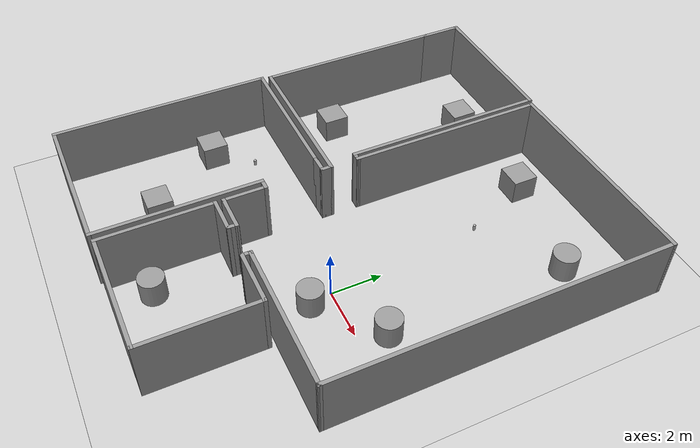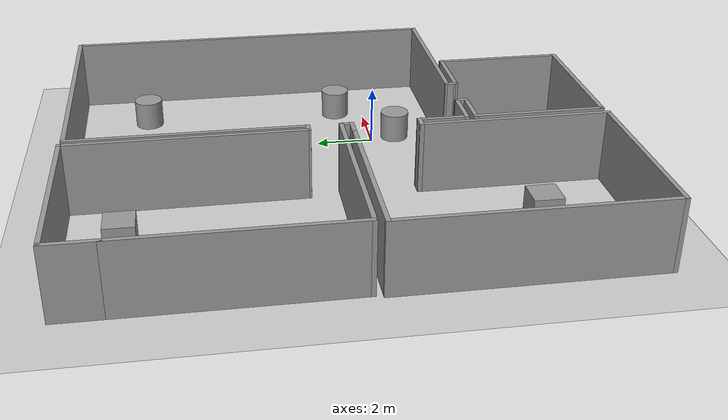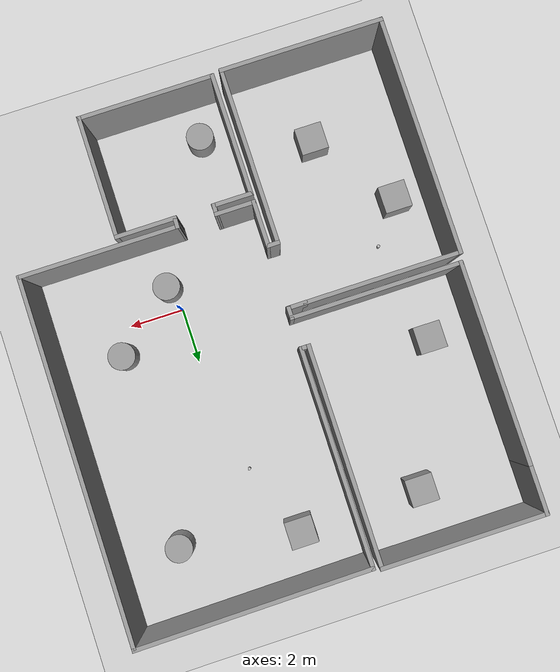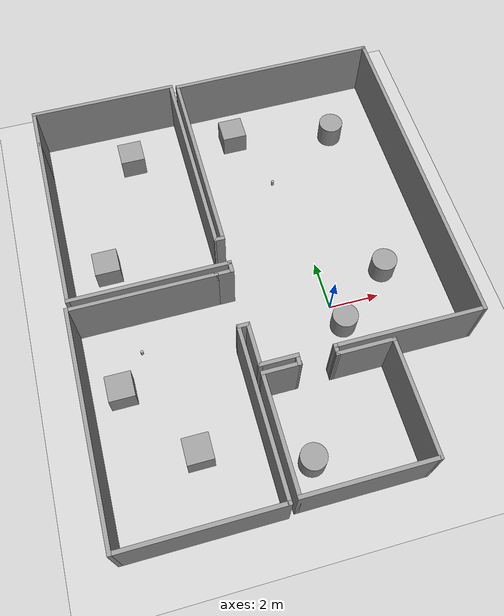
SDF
<sdf version="1.7">
 <world name="default">
  <light name="sun" type="directional">
   <pose>0 0 10 0 -0 0</pose>
   <diffuse>0.8 0.8 0.8 1</diffuse>
   <specular>0.2 0.2 0.2 1</specular>
   <attenuation>
    <range>1000</range>
    <constant>0.9</constant>
    <linear>0.01</linear>
    <quadratic>0.001</quadratic>
   </attenuation>
   <direction>-0.5 0.1 -0.9</direction>
   <spot><inner_angle>0</inner_angle><outer_angle>0</outer_angle><falloff>0</falloff></spot>
  </light>
  <model name="ground_plane">
   <static>1</static>
   <link name="link">
    <collision name="collision">
     <geometry><plane><normal>0 0 1</normal><size>100 100</size></plane></geometry>
     <surface>
      <contact><collide_bitmask>65535</collide_bitmask></contact>
      <friction><ode><mu>100</mu><mu2>50</mu2></ode></friction>
     </surface>
    </collision>
    <visual name="visual">
     <cast_shadows>0</cast_shadows>
     <geometry><plane><normal>0 0 1</normal><size>100 100</size></plane></geometry>
     <material>
      <script><uri>file://media/materials/scripts/gazebo.material</uri><name>Gazebo/Grey</name></script>
     </material>
    </visual>
   </link>
  </model>
  <gravity>0 0 -9.8</gravity>
  <magnetic_field>6e-06 2.3e-05 -4.2e-05</magnetic_field>
  <atmosphere type="adiabatic"/>
  <physics type="ode">
   <max_step_size>0.001</max_step_size>
   <real_time_factor>1</real_time_factor>
   <real_time_update_rate>1000</real_time_update_rate>
  </physics>
  <scene><ambient>0.4 0.4 0.4 1</ambient><background>0.7 0.7 0.7 1</background><shadows>1</shadows></scene>
  <spherical_coordinates>
   <surface_model>EARTH_WGS84</surface_model>
   <latitude_deg>0</latitude_deg>
   <longitude_deg>0</longitude_deg>
   <elevation>0</elevation>
   <heading_deg>0</heading_deg>
  </spherical_coordinates>
  <model name="House">
   <pose>-2.52892 1.69404 0 0 -0 0</pose>
   <link name="Wall_12">
    <collision name="Wall_12_Collision">
     <geometry><box><size>0.75 0.15 2.5</size></box></geometry>
     <pose>0 0 1.25 0 -0 0</pose>
    </collision>
    <visual name="Wall_12_Visual">
     <pose>0 0 1.25 0 -0 0</pose>
     <geometry><box><size>0.75 0.15 2.5</size></box></geometry>
     <material>
      <script><uri>file://media/materials/scripts/gazebo.material</uri><name>Gazebo/Grey</name></script>
      <ambient>1 1 1 1</ambient>
     </material>
     <meta><layer>0</layer></meta>
    </visual>
    <pose>-1.42533 -0.35 0 0 -0 0</pose>
   </link>
   <link name="Wall_13">
    <collision name="Wall_13_Collision">
     <geometry><box><size>0.5 0.15 2.5</size></box></geometry>
     <pose>0 0 1.25 0 -0 0</pose>
    </collision>
    <visual name="Wall_13_Visual">
     <pose>0 0 1.25 0 -0 0</pose>
     <geometry><box><size>0.5 0.15 2.5</size></box></geometry>
     <material>
      <script><uri>file://media/materials/scripts/gazebo.material</uri><name>Gazebo/Grey</name></script>
      <ambient>1 1 1 1</ambient>
     </material>
     <meta><layer>0</layer></meta>
    </visual>
    <pose>-1.12533 -0.175 0 0 -0 1.5708</pose>
   </link>
   <link name="Wall_14">
    <collision name="Wall_14_Collision">
     <geometry><box><size>6.25 0.15 2.5</size></box></geometry>
     <pose>0 0 1.25 0 -0 0</pose>
    </collision>
    <visual name="Wall_14_Visual">
     <pose>0 0 1.25 0 -0 0</pose>
     <geometry><box><size>6.25 0.15 2.5</size></box></geometry>
     <material>
      <script><uri>file://media/materials/scripts/gazebo.material</uri><name>Gazebo/Grey</name></script>
      <ambient>1 1 1 1</ambient>
     </material>
     <meta><layer>0</layer></meta>
    </visual>
    <pose>-4.17533 0 0 0 -0 3.14159</pose>
   </link>
   <link name="Wall_15">
    <collision name="Wall_15_Collision">
     <geometry><box><size>7.5 0.15 2.5</size></box></geometry>
     <pose>0 0 1.25 0 -0 0</pose>
    </collision>
    <visual name="Wall_15_Visual">
     <pose>0 0 1.25 0 -0 0</pose>
     <geometry><box><size>7.5 0.15 2.5</size></box></geometry>
     <material>
      <script><uri>file://media/materials/scripts/gazebo.material</uri><name>Gazebo/Grey</name></script>
      <ambient>1 1 1 1</ambient>
     </material>
     <meta><layer>0</layer></meta>
    </visual>
    <pose>-7.22533 3.675 0 0 -0 1.5708</pose>
   </link>
   <link name="Wall_16">
    <collision name="Wall_16_Collision">
     <geometry><box><size>1.75 0.15 2.5</size></box></geometry>
     <pose>0 0 1.25 0 -0 0</pose>
    </collision>
    <visual name="Wall_16_Visual">
     <pose>0 0 1.25 0 -0 0</pose>
     <geometry><box><size>1.75 0.15 2.5</size></box></geometry>
     <material>
      <script><uri>file://media/materials/scripts/gazebo.material</uri><name>Gazebo/Grey</name></script>
      <ambient>1 1 1 1</ambient>
     </material>
     <meta><layer>0</layer></meta>
    </visual>
    <pose>-7.22533 8.15 0 0 -0 1.5708</pose>
   </link>
   <link name="Wall_17">
    <collision name="Wall_17_Collision">
     <geometry><box><size>6 0.15 2.5</size></box></geometry>
     <pose>0 0 1.25 0 -0 0</pose>
    </collision>
    <visual name="Wall_17_Visual">
     <pose>0 0 1.25 0 -0 0</pose>
     <geometry><box><size>6 0.15 2.5</size></box></geometry>
     <material>
      <script><uri>file://media/materials/scripts/gazebo.material</uri><name>Gazebo/Grey</name></script>
      <ambient>1 1 1 1</ambient>
     </material>
     <meta><layer>0</layer></meta>
    </visual>
    <pose>-4.30033 8.95 0 0 -0 0</pose>
   </link>
   <link name="Wall_18">
    <collision name="Wall_18_Collision">
     <geometry><box><size>8 0.15 2.5</size></box></geometry>
     <pose>0 0 1.25 0 -0 0</pose>
    </collision>
    <visual name="Wall_18_Visual">
     <pose>0 0 1.25 0 -0 0</pose>
     <geometry><box><size>8 0.15 2.5</size></box></geometry>
     <material>
      <script><uri>file://media/materials/scripts/gazebo.material</uri><name>Gazebo/Grey</name></script>
      <ambient>1 1 1 1</ambient>
     </material>
     <meta><layer>0</layer></meta>
    </visual>
    <pose>-1.37533 5.025 0 0 -0 -1.5708</pose>
   </link>
   <link name="Wall_20">
    <collision name="Wall_20_Collision">
     <geometry><box><size>1.5 0.15 2.5</size></box></geometry>
     <pose>0 0 1.25 0 -0 0</pose>
    </collision>
    <visual name="Wall_20_Visual">
     <pose>0 0 1.25 0 -0 0</pose>
     <geometry><box><size>1.5 0.15 2.5</size></box></geometry>
     <material>
      <script><uri>file://media/materials/scripts/gazebo.material</uri><name>Gazebo/Grey</name></script>
      <ambient>1 1 1 1</ambient>
     </material>
     <meta><layer>0</layer></meta>
    </visual>
    <pose>-0.450329 -4.2 0 0 -0 0</pose>
   </link>
   <link name="Wall_21">
    <collision name="Wall_21_Collision">
     <geometry><box><size>0.460772 0.15 2.5</size></box></geometry>
     <pose>0 0 1.25 0 -0 0</pose>
    </collision>
    <visual name="Wall_21_Visual">
     <pose>0 0 1.25 0 -0 0</pose>
     <geometry><box><size>0.460772 0.15 2.5</size></box></geometry>
     <material>
      <script><uri>file://media/materials/scripts/gazebo.material</uri><name>Gazebo/Grey</name></script>
      <ambient>1 1 1 1</ambient>
     </material>
     <meta><layer>0</layer></meta>
    </visual>
    <pose>0.218133 -4.35539 0 0 -0 -1.61285</pose>
   </link>
   <link name="Wall_22">
    <collision name="Wall_22_Collision">
     <geometry><box><size>1.5 0.15 2.5</size></box></geometry>
     <pose>0 0 1.25 0 -0 0</pose>
    </collision>
    <visual name="Wall_22_Visual">
     <pose>0 0 1.25 0 -0 0</pose>
     <geometry><box><size>1.5 0.15 2.5</size></box></geometry>
     <material>
      <script><uri>file://media/materials/scripts/gazebo.material</uri><name>Gazebo/Grey</name></script>
      <ambient>1 1 1 1</ambient>
     </material>
     <meta><layer>0</layer></meta>
    </visual>
    <pose>-0.450329 -4.51077 0 0 -0 3.14159</pose>
   </link>
   <link name="Wall_25">
    <collision name="Wall_25_Collision">
     <geometry><box><size>4.5 0.15 2.5</size></box></geometry>
     <pose>0 0 1.25 0 -0 0</pose>
    </collision>
    <visual name="Wall_25_Visual">
     <pose>0 0 1.25 0 -0 0</pose>
     <geometry><box><size>4.5 0.15 2.5</size></box></geometry>
     <material>
      <script><uri>file://media/materials/scripts/gazebo.material</uri><name>Gazebo/Grey</name></script>
      <ambient>1 1 1 1</ambient>
     </material>
     <meta><layer>0</layer></meta>
    </visual>
    <pose>-1.12533 -6.68577 0 0 -0 -1.5708</pose>
   </link>
   <link name="Wall_26">
    <collision name="Wall_26_Collision">
     <geometry><box><size>5 0.15 2.5</size></box></geometry>
     <pose>0 0 1.25 0 -0 0</pose>
    </collision>
    <visual name="Wall_26_Visual">
     <pose>0 0 1.25 0 -0 0</pose>
     <geometry><box><size>5 0.15 2.5</size></box></geometry>
     <material>
      <script><uri>file://media/materials/scripts/gazebo.material</uri><name>Gazebo/Grey</name></script>
      <ambient>1 1 1 1</ambient>
     </material>
     <meta><layer>0</layer></meta>
    </visual>
    <pose>1.29967 -8.86077 0 0 -0 0</pose>
   </link>
   <link name="Wall_27">
    <collision name="Wall_27_Collision">
     <geometry><box><size>4.5 0.15 2.5</size></box></geometry>
     <pose>0 0 1.25 0 -0 0</pose>
    </collision>
    <visual name="Wall_27_Visual">
     <pose>0 0 1.25 0 -0 0</pose>
     <geometry><box><size>4.5 0.15 2.5</size></box></geometry>
     <material>
      <script><uri>file://media/materials/scripts/gazebo.material</uri><name>Gazebo/Grey</name></script>
      <ambient>1 1 1 1</ambient>
     </material>
     <meta><layer>0</layer></meta>
    </visual>
    <pose>3.72467 -6.68577 0 0 -0 1.5708</pose>
   </link>
   <link name="Wall_28">
    <collision name="Wall_28_Collision">
     <geometry><box><size>2.25 0.15 2.5</size></box></geometry>
     <pose>0 0 1.25 0 -0 0</pose>
    </collision>
    <visual name="Wall_28_Visual">
     <pose>0 0 1.25 0 -0 0</pose>
     <geometry><box><size>2.25 0.15 2.5</size></box></geometry>
     <material>
      <script><uri>file://media/materials/scripts/gazebo.material</uri><name>Gazebo/Grey</name></script>
      <ambient>1 1 1 1</ambient>
     </material>
     <meta><layer>0</layer></meta>
    </visual>
    <pose>2.67467 -4.51077 0 0 -0 3.14159</pose>
   </link>
   <link name="Wall_31">
    <collision name="Wall_31_Collision">
     <geometry><box><size>0.422122 0.15 2.5</size></box></geometry>
     <pose>0 0 1.25 0 -0 0</pose>
    </collision>
    <visual name="Wall_31_Visual">
     <pose>0 0 1.25 0 -0 0</pose>
     <geometry><box><size>0.422122 0.15 2.5</size></box></geometry>
     <material>
      <script><uri>file://media/materials/scripts/gazebo.material</uri><name>Gazebo/Grey</name></script>
      <ambient>1 1 1 1</ambient>
     </material>
     <meta><layer>0</layer></meta>
    </visual>
    <pose>-1.23929 1.09736 0 0 -0 -0.01939</pose>
   </link>
   <link name="Wall_32">
    <collision name="Wall_32_Collision">
     <geometry><box><size>7.90524 0.15 2.5</size></box></geometry>
     <pose>0 0 1.25 0 -0 0</pose>
    </collision>
    <visual name="Wall_32_Visual">
     <pose>0 0 1.25 0 -0 0</pose>
     <geometry><box><size>7.90524 0.15 2.5</size></box></geometry>
     <material>
      <script><uri>file://media/materials/scripts/gazebo.material</uri><name>Gazebo/Grey</name></script>
      <ambient>1 1 1 1</ambient>
     </material>
     <meta><layer>0</layer></meta>
    </visual>
    <pose>-1.09751 4.97793 0 0 -0 1.56931</pose>
   </link>
   <link name="Wall_33">
    <collision name="Wall_33_Collision">
     <geometry><box><size>8.56676 0.15 2.5</size></box></geometry>
     <pose>0 0 1.25 0 -0 0</pose>
    </collision>
    <visual name="Wall_33_Visual">
     <pose>0 0 1.25 0 -0 0</pose>
     <geometry><box><size>8.56676 0.15 2.5</size></box></geometry>
     <material>
      <script><uri>file://media/materials/scripts/gazebo.material</uri><name>Gazebo/Grey</name></script>
      <ambient>1 1 1 1</ambient>
     </material>
     <meta><layer>0</layer></meta>
    </visual>
    <pose>3.11645 8.88707 0 0 -0 0.008819</pose>
   </link>
   <link name="Wall_34">
    <collision name="Wall_34_Collision">
     <geometry><box><size>13.2218 0.15 2.5</size></box></geometry>
     <pose>0 0 1.25 0 -0 0</pose>
    </collision>
    <visual name="Wall_34_Visual">
     <pose>0 0 1.25 0 -0 0</pose>
     <geometry><box><size>13.2218 0.15 2.5</size></box></geometry>
     <material>
      <script><uri>file://media/materials/scripts/gazebo.material</uri><name>Gazebo/Grey</name></script>
      <ambient>1 1 1 1</ambient>
     </material>
     <meta><layer>0</layer></meta>
    </visual>
    <pose>7.32226 2.31932 0 0 -0 -1.57116</pose>
   </link>
   <link name="Wall_37">
    <collision name="Wall_37_Collision">
     <geometry><box><size>5.83712 0.15 2.5</size></box></geometry>
     <pose>0 0 1.25 0 -0 0</pose>
    </collision>
    <visual name="Wall_37_Visual">
     <pose>0 0 1.25 0 -0 0</pose>
     <geometry><box><size>5.83712 0.15 2.5</size></box></geometry>
     <material>
      <script><uri>file://media/materials/scripts/gazebo.material</uri><name>Gazebo/Grey</name></script>
      <ambient>1 1 1 1</ambient>
     </material>
     <meta><layer>0</layer></meta>
    </visual>
    <pose>4.47636 -4.21167 0 0 -0 3.13986</pose>
   </link>
   <link name="Wall_38">
    <collision name="Wall_38_Collision">
     <geometry><box><size>0.454032 0.15 2.5</size></box></geometry>
     <pose>0 0 1.25 0 -0 0</pose>
    </collision>
    <visual name="Wall_38_Visual">
     <pose>0 0 1.25 0 -0 0</pose>
     <geometry><box><size>0.454032 0.15 2.5</size></box></geometry>
     <material>
      <script><uri>file://media/materials/scripts/gazebo.material</uri><name>Gazebo/Grey</name></script>
      <ambient>1 1 1 1</ambient>
     </material>
     <meta><layer>0</layer></meta>
    </visual>
    <pose>1.62877 -4.35876 0 0 -0 -1.59775</pose>
   </link>
   <link name="Wall_4">
    <collision name="Wall_4_Collision">
     <geometry><box><size>1.75 0.15 2.5</size></box></geometry>
     <pose>0 0 1.25 0 -0 0</pose>
    </collision>
    <visual name="Wall_4_Visual">
     <pose>0 0 1.25 0 -0 0</pose>
     <geometry><box><size>1.75 0.15 2.5</size></box></geometry>
     <material>
      <script><uri>file://media/materials/scripts/gazebo.material</uri><name>Gazebo/Grey</name></script>
      <ambient>1 1 1 1</ambient>
     </material>
     <meta><layer>0</layer></meta>
    </visual>
    <pose>-1.12533 -3.4 0 0 -0 1.5708</pose>
   </link>
   <link name="Wall_5">
    <collision name="Wall_5_Collision">
     <geometry><box><size>0.5 0.15 2.5</size></box></geometry>
     <pose>0 0 1.25 0 -0 0</pose>
    </collision>
    <visual name="Wall_5_Visual">
     <pose>0 0 1.25 0 -0 0</pose>
     <geometry><box><size>0.5 0.15 2.5</size></box></geometry>
     <material>
      <script><uri>file://media/materials/scripts/gazebo.material</uri><name>Gazebo/Grey</name></script>
      <ambient>1 1 1 1</ambient>
     </material>
     <meta><layer>0</layer></meta>
    </visual>
    <pose>-1.30033 -2.6 0 0 -0 3.14159</pose>
   </link>
   <link name="Wall_6">
    <collision name="Wall_6_Collision">
     <geometry><box><size>6.5 0.15 2.5</size></box></geometry>
     <pose>0 0 1.25 0 -0 0</pose>
    </collision>
    <visual name="Wall_6_Visual">
     <pose>0 0 1.25 0 -0 0</pose>
     <geometry><box><size>6.5 0.15 2.5</size></box></geometry>
     <material>
      <script><uri>file://media/materials/scripts/gazebo.material</uri><name>Gazebo/Grey</name></script>
      <ambient>1 1 1 1</ambient>
     </material>
     <meta><layer>0</layer></meta>
    </visual>
    <pose>-1.47533 -5.775 0 0 -0 -1.5708</pose>
   </link>
   <link name="Wall_7">
    <collision name="Wall_7_Collision">
     <geometry><box><size>6 0.15 2.5</size></box></geometry>
     <pose>0 0 1.25 0 -0 0</pose>
    </collision>
    <visual name="Wall_7_Visual">
     <pose>0 0 1.25 0 -0 0</pose>
     <geometry><box><size>6 0.15 2.5</size></box></geometry>
     <material>
      <script><uri>file://media/materials/scripts/gazebo.material</uri><name>Gazebo/Grey</name></script>
      <ambient>1 1 1 1</ambient>
     </material>
     <meta><layer>0</layer></meta>
    </visual>
    <pose>-4.40033 -8.95 0 0 -0 3.14159</pose>
   </link>
   <link name="Wall_8">
    <collision name="Wall_8_Collision">
     <geometry><box><size>8.75 0.15 2.5</size></box></geometry>
     <pose>0 0 1.25 0 -0 0</pose>
    </collision>
    <visual name="Wall_8_Visual">
     <pose>0 0 1.25 0 -0 0</pose>
     <geometry><box><size>8.75 0.15 2.5</size></box></geometry>
     <material>
      <script><uri>file://media/materials/scripts/gazebo.material</uri><name>Gazebo/Grey</name></script>
      <ambient>1 1 1 1</ambient>
     </material>
     <meta><layer>0</layer></meta>
    </visual>
    <pose>-7.32533 -4.65 0 0 -0 1.5708</pose>
   </link>
   <link name="Wall_9">
    <collision name="Wall_9_Collision">
     <geometry><box><size>5.75 0.15 2.5</size></box></geometry>
     <pose>0 0 1.25 0 -0 0</pose>
    </collision>
    <visual name="Wall_9_Visual">
     <pose>0 0 1.25 0 -0 0</pose>
     <geometry><box><size>5.75 0.15 2.5</size></box></geometry>
     <material>
      <script><uri>file://media/materials/scripts/gazebo.material</uri><name>Gazebo/Grey</name></script>
      <ambient>1 1 1 1</ambient>
     </material>
     <meta><layer>0</layer></meta>
    </visual>
    <pose>-4.52533 -0.35 0 0 -0 0</pose>
   </link>
   <static>1</static>
  </model>
  <model name="beer">
   <link name="link">
    <pose>0 0 0.115 0 -0 0</pose>
    <inertial>
     <mass>0.39</mass>
     <inertia><ixx>0.00058</ixx><ixy>0</ixy><ixz>0</ixz><iyy>0.00058</iyy><iyz>0</iyz><izz>0.00019</izz></inertia>
    </inertial>
    <collision name="collision">
     <geometry><cylinder><radius>0.055</radius><length>0.23</length></cylinder></geometry>
    </collision>
    <visual name="visual">
     <geometry><cylinder><radius>0.055</radius><length>0.23</length></cylinder></geometry>
     <material>
      <script>
       <uri>model://beer/materials/scripts</uri>
       <uri>model://beer/materials/textures</uri>
       <name>Beer/Diffuse</name>
      </script>
     </material>
    </visual>
   </link>
   <pose>-7.60749 0.012916 -2e-06 1e-06 -0 -1.4e-05</pose>
  </model>
  <model name="beer_0">
   <link name="link">
    <pose>0 0 0.115 0 -0 0</pose>
    <inertial>
     <mass>0.39</mass>
     <inertia><ixx>0.00058</ixx><ixy>0</ixy><ixz>0</ixz><iyy>0.00058</iyy><iyz>0</iyz><izz>0.00019</izz></inertia>
    </inertial>
    <collision name="collision">
     <geometry><cylinder><radius>0.055</radius><length>0.23</length></cylinder></geometry>
    </collision>
    <visual name="visual">
     <geometry><cylinder><radius>0.055</radius><length>0.23</length></cylinder></geometry>
     <material>
      <script>
       <uri>model://beer/materials/scripts</uri>
       <uri>model://beer/materials/textures</uri>
       <name>Beer/Diffuse</name>
      </script>
     </material>
    </visual>
   </link>
   <pose>-0.558091 6.29037 -7e-06 -1e-06 -0 -1.3e-05</pose>
  </model>
  <model name="unit_box">
   <pose>-1.66829 8.91911 0.499995 0 1e-05 0</pose>
   <link name="link">
    <inertial>
     <mass>1</mass>
     <inertia>
      <ixx>0.166667</ixx>
      <ixy>0</ixy>
      <ixz>0</ixz>
      <iyy>0.166667</iyy>
      <iyz>0</iyz>
      <izz>0.166667</izz>
     </inertia>
    </inertial>
    <collision name="collision"><geometry><box><size>1 1 1</size></box></geometry></collision>
    <visual name="visual">
     <geometry><box><size>1 1 1</size></box></geometry>
     <material>
      <script><name>Gazebo/Grey</name><uri>file://media/materials/scripts/gazebo.material</uri></script>
     </material>
    </visual>
   </link>
  </model>
  <model name="unit_box_0">
   <pose>-6.42338 -4.3917 0.499995 -1e-05 -0 -0</pose>
   <link name="link">
    <inertial>
     <mass>1</mass>
     <inertia>
      <ixx>0.166667</ixx>
      <ixy>0</ixy>
      <ixz>0</ixz>
      <iyy>0.166667</iyy>
      <iyz>0</iyz>
      <izz>0.166667</izz>
     </inertia>
    </inertial>
    <collision name="collision"><geometry><box><size>1 1 1</size></box></geometry></collision>
    <visual name="visual">
     <geometry><box><size>1 1 1</size></box></geometry>
     <material>
      <script><name>Gazebo/Grey</name><uri>file://media/materials/scripts/gazebo.material</uri></script>
     </material>
    </visual>
   </link>
  </model>
  <model name="unit_box_1">
   <pose>-8.19905 3.79756 0.499995 0 1e-05 0</pose>
   <link name="link">
    <inertial>
     <mass>1</mass>
     <inertia>
      <ixx>0.166667</ixx>
      <ixy>0</ixy>
      <ixz>0</ixz>
      <iyy>0.166667</iyy>
      <iyz>0</iyz>
      <izz>0.166667</izz>
     </inertia>
    </inertial>
    <collision name="collision"><geometry><box><size>1 1 1</size></box></geometry></collision>
    <visual name="visual">
     <geometry><box><size>1 1 1</size></box></geometry>
     <material>
      <script><name>Gazebo/Grey</name><uri>file://media/materials/scripts/gazebo.material</uri></script>
     </material>
    </visual>
   </link>
  </model>
  <model name="unit_box_2">
   <pose>-6.18858 8.84088 0.499995 -1e-05 -0 -0</pose>
   <link name="link">
    <inertial>
     <mass>1</mass>
     <inertia>
      <ixx>0.166667</ixx>
      <ixy>0</ixy>
      <ixz>0</ixz>
      <iyy>0.166667</iyy>
      <iyz>0</iyz>
      <izz>0.166667</izz>
     </inertia>
    </inertial>
    <collision name="collision"><geometry><box><size>1 1 1</size></box></geometry></collision>
    <visual name="visual">
     <geometry><box><size>1 1 1</size></box></geometry>
     <material>
      <script><name>Gazebo/Grey</name><uri>file://media/materials/scripts/gazebo.material</uri></script>
     </material>
    </visual>
   </link>
  </model>
  <model name="unit_cylinder">
   <pose>-2.58613 -5.71899 0.499992 -3e-06 -4e-06 -0</pose>
   <link name="link">
    <inertial>
     <mass>1</mass>
     <inertia><ixx>0.145833</ixx><ixy>0</ixy><ixz>0</ixz><iyy>0.145833</iyy><iyz>0</iyz><izz>0.125</izz></inertia>
    </inertial>
    <collision name="collision">
     <geometry><cylinder><radius>0.5</radius><length>1</length></cylinder></geometry>
    </collision>
    <visual name="visual">
     <geometry><cylinder><radius>0.5</radius><length>1</length></cylinder></geometry>
     <material>
      <script><name>Gazebo/Grey</name><uri>file://media/materials/scripts/gazebo.material</uri></script>
     </material>
    </visual>
   </link>
  </model>
  <model name="unit_cylinder_0">
   <pose>2.51024 1.01384 0.499993 -3e-06 -3e-06 0</pose>
   <link name="link">
    <inertial>
     <mass>1</mass>
     <inertia><ixx>0.145833</ixx><ixy>0</ixy><ixz>0</ixz><iyy>0.145833</iyy><iyz>0</iyz><izz>0.125</izz></inertia>
    </inertial>
    <collision name="collision">
     <geometry><cylinder><radius>0.5</radius><length>1</length></cylinder></geometry>
    </collision>
    <visual name="visual">
     <geometry><cylinder><radius>0.5</radius><length>1</length></cylinder></geometry>
     <material>
      <script><name>Gazebo/Grey</name><uri>file://media/materials/scripts/gazebo.material</uri></script>
     </material>
    </visual>
   </link>
  </model>
  <model name="unit_box_3">
   <pose>-8.63181 -1.42765 0.499995 0 1e-05 0</pose>
   <link name="link">
    <inertial>
     <mass>1</mass>
     <inertia>
      <ixx>0.166667</ixx>
      <ixy>0</ixy>
      <ixz>0</ixz>
      <iyy>0.166667</iyy>
      <iyz>0</iyz>
      <izz>0.166667</izz>
     </inertia>
    </inertial>
    <collision name="collision"><geometry><box><size>1 1 1</size></box></geometry></collision>
    <visual name="visual">
     <geometry><box><size>1 1 1</size></box></geometry>
     <material>
      <script><name>Gazebo/Grey</name><uri>file://media/materials/scripts/gazebo.material</uri></script>
     </material>
    </visual>
   </link>
  </model>
  <model name="unit_cylinder_1">
   <pose>2.61798 8.1141 0.499993 -3e-06 -4e-06 -0</pose>
   <link name="link">
    <inertial>
     <mass>1</mass>
     <inertia><ixx>0.145833</ixx><ixy>0</ixy><ixz>0</ixz><iyy>0.145833</iyy><iyz>0</iyz><izz>0.125</izz></inertia>
    </inertial>
    <collision name="collision">
     <geometry><cylinder><radius>0.5</radius><length>1</length></cylinder></geometry>
    </collision>
    <visual name="visual">
     <geometry><cylinder><radius>0.5</radius><length>1</length></cylinder></geometry>
     <material>
      <script><name>Gazebo/Grey</name><uri>file://media/materials/scripts/gazebo.material</uri></script>
     </material>
    </visual>
   </link>
  </model>
  <model name="unit_cylinder_2">
   <pose>0.228448 -0.881274 0.499997 3e-06 4e-06 -0</pose>
   <link name="link">
    <inertial>
     <mass>1</mass>
     <inertia><ixx>0.145833</ixx><ixy>0</ixy><ixz>0</ixz><iyy>0.145833</iyy><iyz>0</iyz><izz>0.125</izz></inertia>
    </inertial>
    <collision name="collision">
     <geometry><cylinder><radius>0.5</radius><length>1</length></cylinder></geometry>
    </collision>
    <visual name="visual">
     <geometry><cylinder><radius>0.5</radius><length>1</length></cylinder></geometry>
     <material>
      <script><name>Gazebo/Grey</name><uri>file://media/materials/scripts/gazebo.material</uri></script>
     </material>
    </visual>
   </link>
  </model>
 </world>
</sdf>
